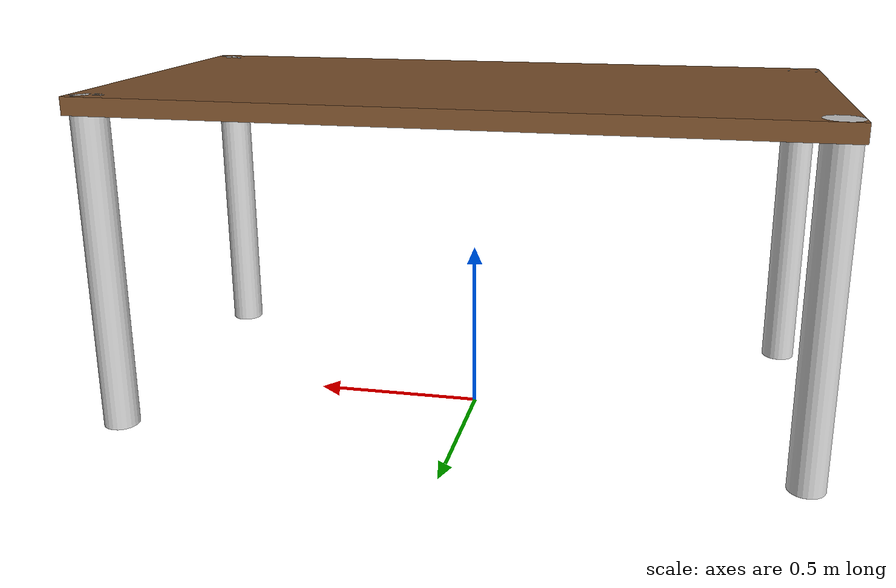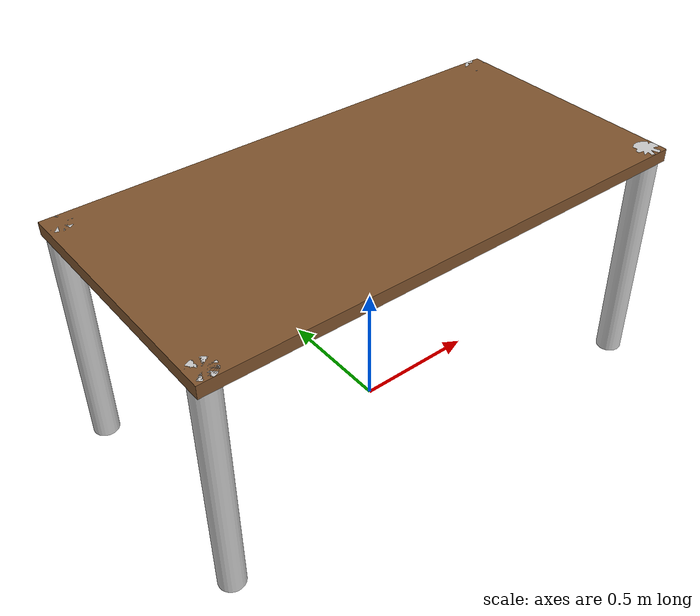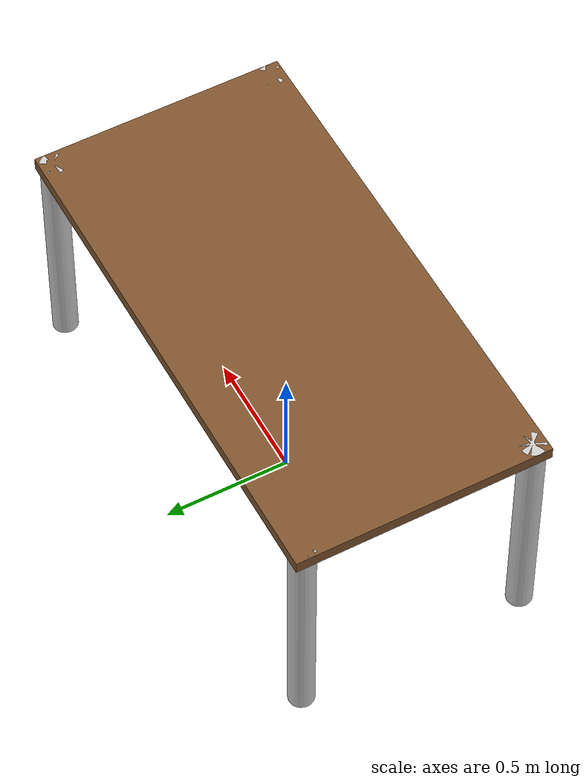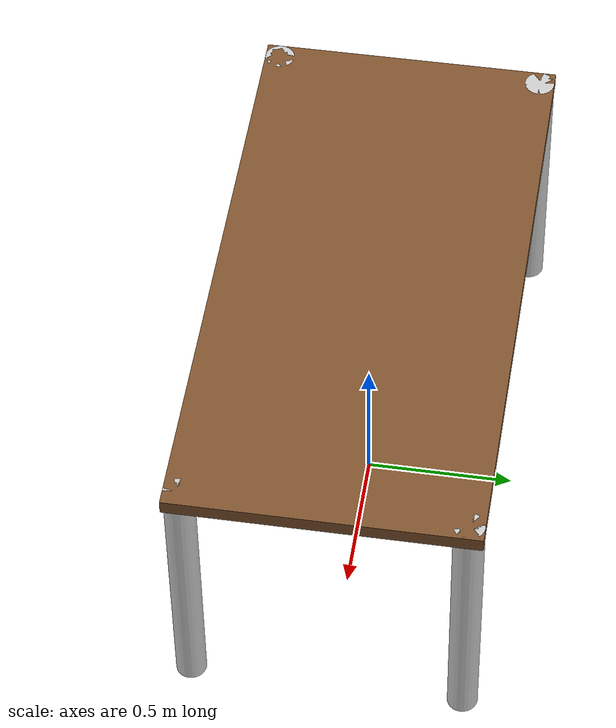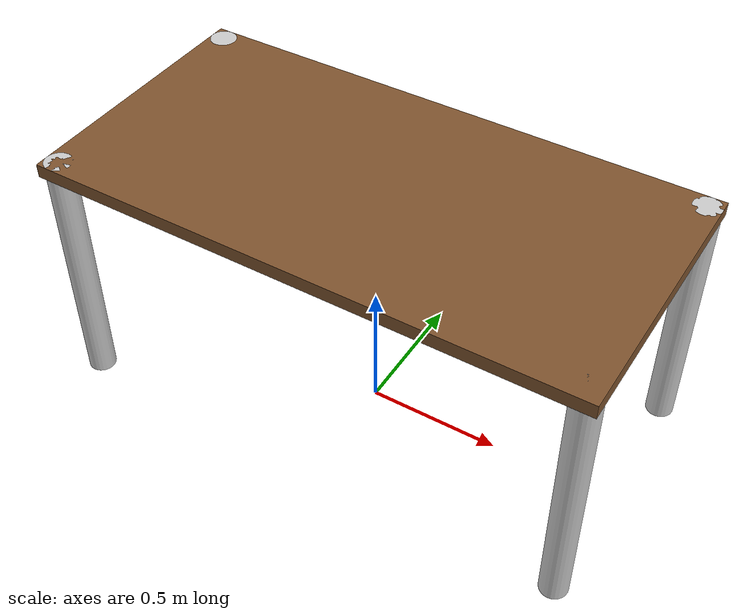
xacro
<?xml version="1.0" encoding="UTF-8"?>
<robot xmlns:xacro="http://www.ros.org/wiki/xacro" name="table">

  <xacro:include filename="materials.xacro"/>
  <xacro:include filename="table_macro.xacro"/>

  <link name="world"/>

  <!-- IMPORTANT: table top must be at height 1 -->
  <xacro:table prefix="table_" parent="world">
    <origin xyz="0 0 1" rpy="0 0 0"/>
  </xacro:table>

</robot>

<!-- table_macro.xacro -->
<robot xmlns:xacro="http://www.ros.org/wiki/xacro">

  <xacro:macro name="table" params="prefix parent *origin">

    <!-- TABLE PROPERTIES -->
    <xacro:property name="table_length" value="2" />
    <xacro:property name="table_width" value="1" />
    <xacro:property name="table_height" value="1" />
    <xacro:property name="table_thickness" value="0.05" />
    <xacro:property name="leg_length" value="${table_height - table_thickness}" />
    <xacro:property name="leg_radius" value="0.05" />

    <!-- Base Joint (places table top frame in world) -->
    <joint name="${prefix}base_joint" type="fixed">
      <xacro:insert_block name="origin"/>
      <parent link="${parent}" />
      <child link="${prefix}top" />
    </joint>

    <!-- Table Top -->
    <link name="${prefix}top">
      <visual>
        <!-- top frame is at surface, so geometry goes downward -->
        <origin xyz="0 0 ${-table_thickness/2}" rpy="0 0 0"/>
        <geometry>
          <box size="${table_length} ${table_width} ${table_thickness}" />
        </geometry>
        <material name="brown"/>
      </visual>
    </link>

    <!-- LEG POSITIONS -->
    <xacro:property name="x_pos" value="${table_length/2 - leg_radius}" />
    <xacro:property name="y_pos" value="${table_width/2 - leg_radius}" />

    <!-- ================= LEGS ================= -->

    <!-- Leg 1 -->
    <joint name="${prefix}leg1_joint" type="fixed">
      <parent link="${prefix}top"/>
      <child link="${prefix}leg1"/>
      <origin xyz="${x_pos} ${y_pos} 0" rpy="0 0 0"/>
    </joint>

    <link name="${prefix}leg1">
      <visual>
        <origin xyz="0 0 ${-leg_length/2}" rpy="0 0 0"/>
        <geometry>
          <cylinder radius="${leg_radius}" length="${leg_length}" />
        </geometry>
        <material name="light_grey"/>
      </visual>
    </link>

    <!-- Leg 2 -->
    <joint name="${prefix}leg2_joint" type="fixed">
      <parent link="${prefix}top"/>
      <child link="${prefix}leg2"/>
      <origin xyz="${x_pos} ${-y_pos} 0" rpy="0 0 0"/>
    </joint>

    <link name="${prefix}leg2">
      <visual>
        <origin xyz="0 0 ${-leg_length/2}" rpy="0 0 0"/>
        <geometry>
          <cylinder radius="${leg_radius}" length="${leg_length}" />
        </geometry>
        <material name="light_grey"/>
      </visual>
    </link>

    <!-- Leg 3 -->
    <joint name="${prefix}leg3_joint" type="fixed">
      <parent link="${prefix}top"/>
      <child link="${prefix}leg3"/>
      <origin xyz="${-x_pos} ${y_pos} 0" rpy="0 0 0"/>
    </joint>

    <link name="${prefix}leg3">
      <visual>
        <origin xyz="0 0 ${-leg_length/2}" rpy="0 0 0"/>
        <geometry>
          <cylinder radius="${leg_radius}" length="${leg_length}" />
        </geometry>
        <material name="light_grey"/>
      </visual>
    </link>

    <!-- Leg 4 -->
    <joint name="${prefix}leg4_joint" type="fixed">
      <parent link="${prefix}top"/>
      <child link="${prefix}leg4"/>
      <origin xyz="${-x_pos} ${-y_pos} 0" rpy="0 0 0"/>
    </joint>

    <link name="${prefix}leg4">
      <visual>
        <origin xyz="0 0 ${-leg_length/2}" rpy="0 0 0"/>
        <geometry>
          <cylinder radius="${leg_radius}" length="${leg_length}" />
        </geometry>
        <material name="light_grey"/>
      </visual>
    </link>

  </xacro:macro>

</robot>
